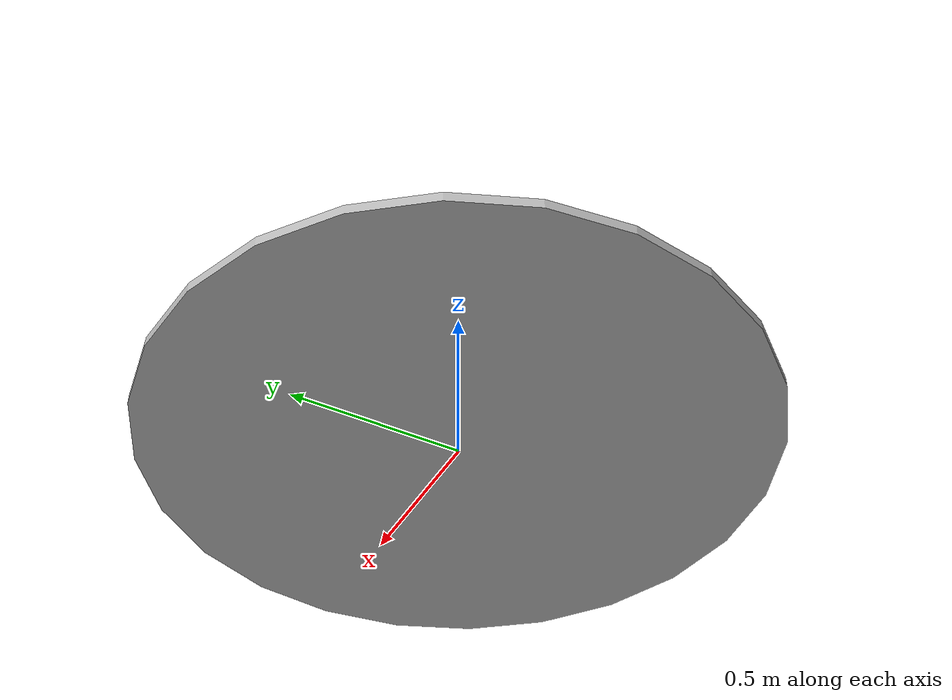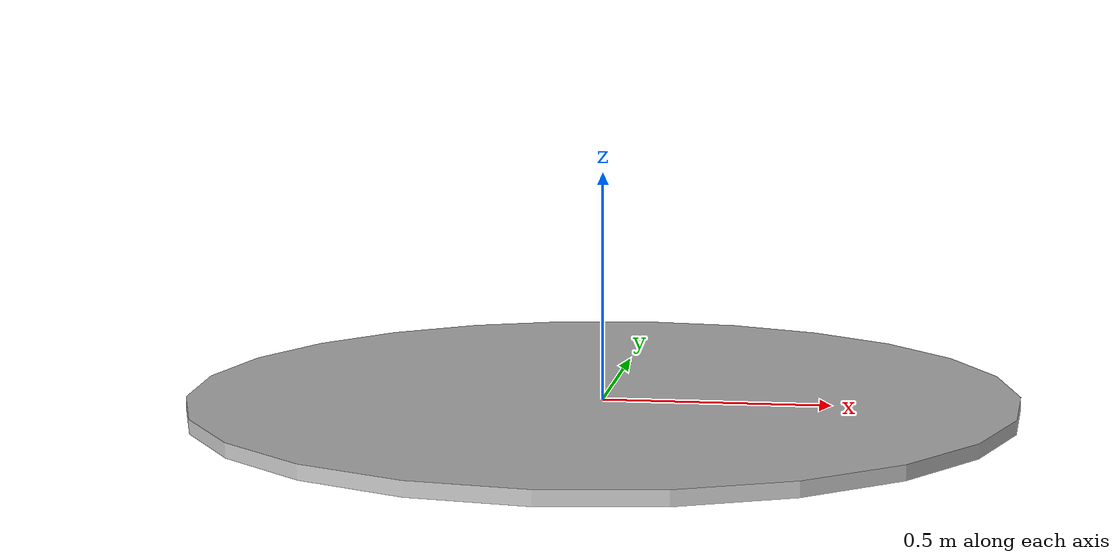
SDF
<?xml version="1.0"?>
<sdf version="1.6">
  <model name="rwc2017/carpet">
    <link name="1_link">
      <collision name="1_col">
        <geometry>
          <cylinder>
            <length>0.03</length>
            <radius>0.9</radius>
          </cylinder>
        </geometry>
      </collision>
      <visual name="1_vis">
        <geometry>
          <cylinder>
            <length>0.03</length>
            <radius>0.9</radius>
          </cylinder>
        </geometry>
      </visual>
      <pose>0 0 0.015 0 0 0</pose>
    </link>
    <static>true</static>
  </model>
</sdf>
